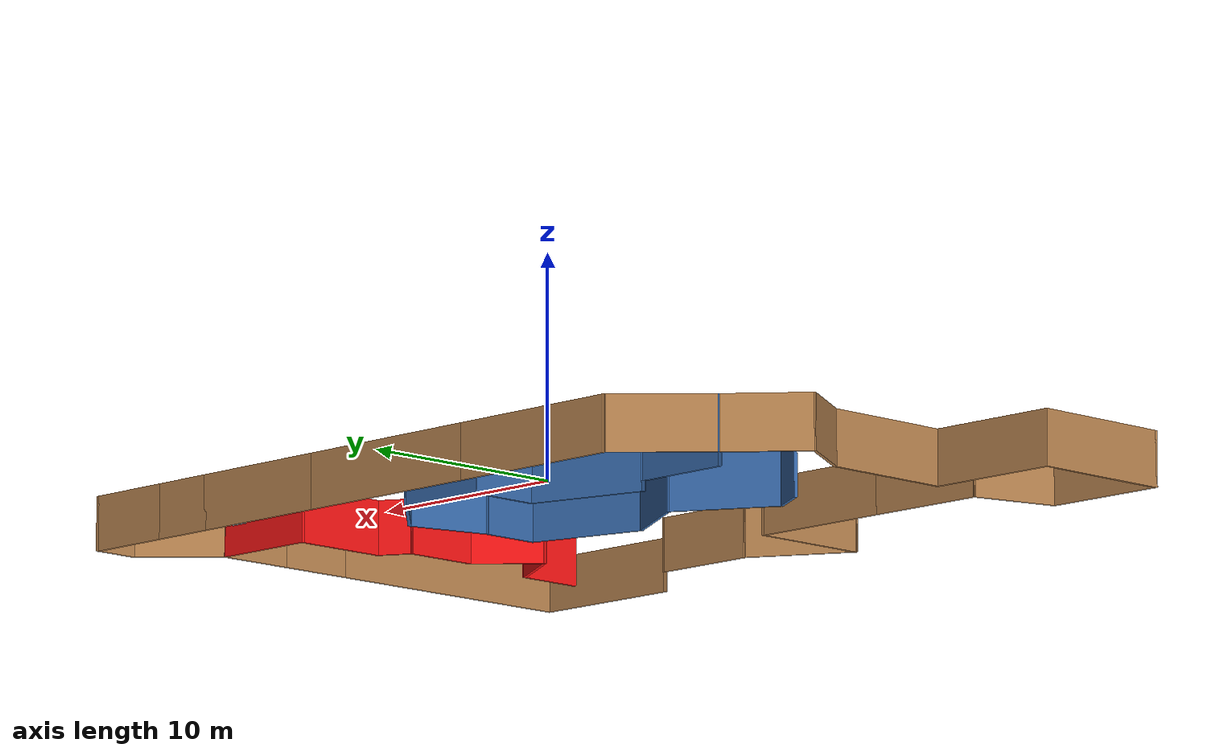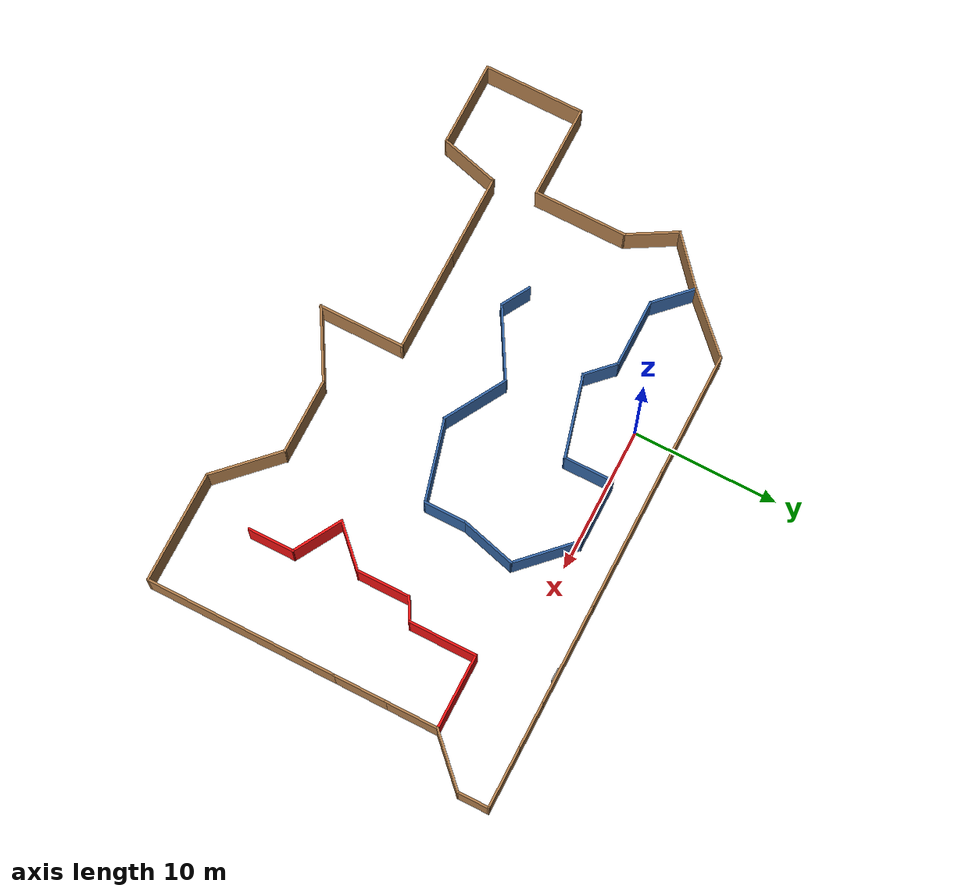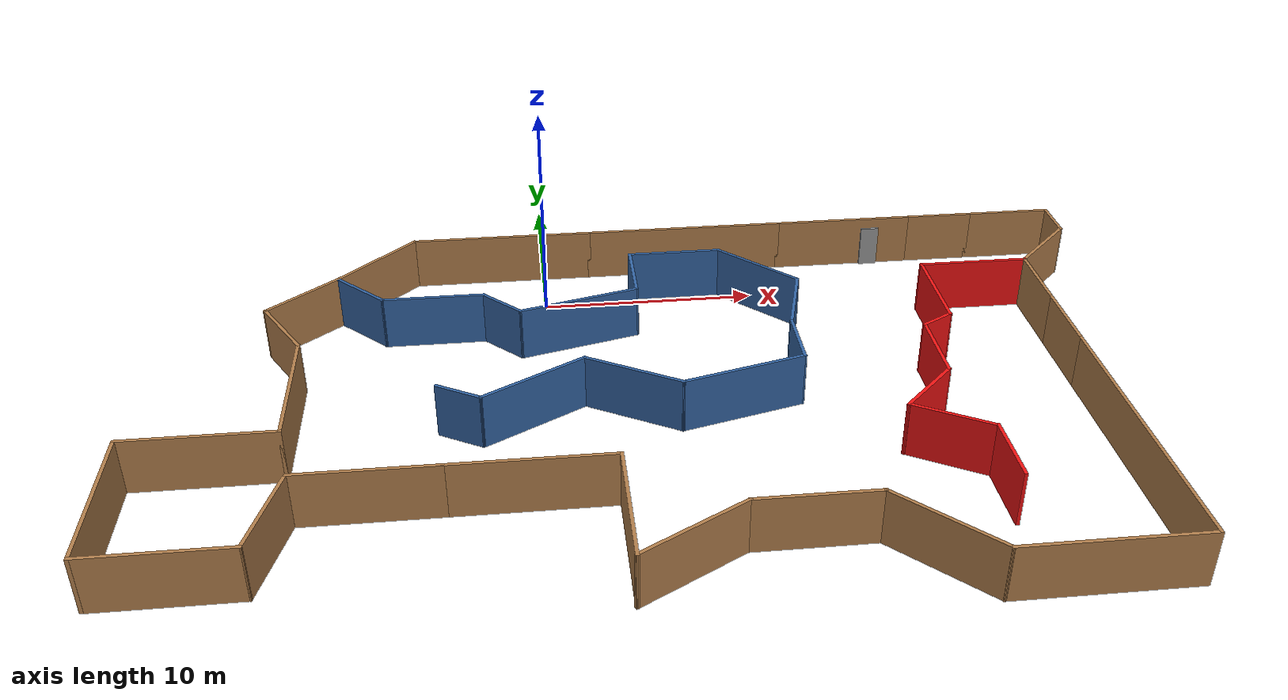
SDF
<?xml version='1.0'?>
<sdf version='1.6'>
  <model name='office'>
    <pose frame=''>4.33914 -9.8283 0 0 -0 0</pose>
    <link name='Door_0'>
      <collision name='Door_0_Collision'>
        <geometry>
          <box>
            <size>0.9 0.17 2</size>
          </box>
        </geometry>
        <pose frame=''>0 0 1 0 -0 0</pose>
      </collision>
      <visual name='Door_0_Visual'>
        <pose frame=''>0 0 1 0 -0 0</pose>
        <geometry>
          <box>
            <size>0.9 0.17 2</size>
          </box>
        </geometry>
        <material>
          <script>
            <uri>file://media/materials/scripts/gazebo.material</uri>
            <name>Gazebo/Grey</name>
          </script>
        </material>
      </visual>
      <pose frame=''>12.3308 12.5503 0 0 -0 0</pose>
    </link>
    <link name='Wall_0'>
      <collision name='Wall_0_Collision'>
        <geometry>
          <box>
            <size>5 0.15 2.5</size>
          </box>
        </geometry>
        <pose frame=''>0 0 1.25 0 -0 0</pose>
      </collision>
      <visual name='Wall_0_Visual'>
        <pose frame=''>0 0 1.25 0 -0 0</pose>
        <geometry>
          <box>
            <size>5 0.15 2.5</size>
          </box>
        </geometry>
        <material>
          <script>
            <uri>file://media/materials/scripts/gazebo.material</uri>
            <name>Gazebo/Wood</name>
          </script>
          <ambient>1 1 1 1</ambient>
        </material>
        <meta>
          <layer>0</layer>
        </meta>
      </visual>
      <pose frame=''>-12.3636 10.9348 0 0 -0 0.785398</pose>
    </link>
    <link name='Wall_1'>
      <collision name='Wall_1_Collision'>
        <geometry>
          <box>
            <size>8.75 0.15 2.5</size>
          </box>
        </geometry>
        <pose frame=''>0 0 1.25 0 -0 0</pose>
      </collision>
      <visual name='Wall_1_Visual'>
        <pose frame=''>0 0 1.25 0 -0 0</pose>
        <geometry>
          <box>
            <size>8.75 0.15 2.5</size>
          </box>
        </geometry>
        <material>
          <script>
            <uri>file://media/materials/scripts/gazebo.material</uri>
            <name>Gazebo/Wood</name>
          </script>
          <ambient>1 1 1 1</ambient>
        </material>
        <meta>
          <layer>0</layer>
        </meta>
      </visual>
      <pose frame=''>-6.3489 12.6496 0 0 -0 0</pose>
    </link>
    <link name='Wall_10'>
      <collision name='Wall_10_Collision'>
        <geometry>
          <box>
            <size>13.25 0.15 2.5</size>
          </box>
        </geometry>
        <pose frame=''>0 0 1.25 0 -0 0</pose>
      </collision>
      <visual name='Wall_10_Visual'>
        <pose frame=''>0 0 1.25 0 -0 0</pose>
        <geometry>
          <box>
            <size>13.25 0.15 2.5</size>
          </box>
        </geometry>
        <material>
          <script>
            <uri>file://media/materials/scripts/gazebo.material</uri>
            <name>Gazebo/Wood</name>
          </script>
          <ambient>1 1 1 1</ambient>
        </material>
        <meta>
          <layer>0</layer>
        </meta>
      </visual>
      <pose frame=''>18.702 -6.09957 0 0 -0 -1.5708</pose>
    </link>
    <link name='Wall_11'>
      <collision name='Wall_11_Collision'>
        <geometry>
          <box>
            <size>7.75 0.15 2.5</size>
          </box>
        </geometry>
        <pose frame=''>0 0 1.25 0 -0 0</pose>
      </collision>
      <visual name='Wall_11_Visual'>
        <pose frame=''>0 0 1.25 0 -0 0</pose>
        <geometry>
          <box>
            <size>7.75 0.15 2.5</size>
          </box>
        </geometry>
        <material>
          <script>
            <uri>file://media/materials/scripts/gazebo.material</uri>
            <name>Gazebo/Wood</name>
          </script>
          <ambient>1 1 1 1</ambient>
        </material>
        <meta>
          <layer>0</layer>
        </meta>
      </visual>
      <pose frame=''>14.902 -12.6496 0 0 -0 3.14159</pose>
    </link>
    <link name='Wall_12'>
      <collision name='Wall_12_Collision'>
        <geometry>
          <box>
            <size>5.25 0.15 2.5</size>
          </box>
        </geometry>
        <pose frame=''>0 0 1.25 0 -0 0</pose>
      </collision>
      <visual name='Wall_12_Visual'>
        <pose frame=''>0 0 1.25 0 -0 0</pose>
        <geometry>
          <box>
            <size>5.25 0.15 2.5</size>
          </box>
        </geometry>
        <material>
          <script>
            <uri>file://media/materials/scripts/gazebo.material</uri>
            <name>Gazebo/Wood</name>
          </script>
          <ambient>1 1 1 1</ambient>
        </material>
        <meta>
          <layer>0</layer>
        </meta>
      </visual>
      <pose frame=''>9.29884 -10.8464 0 0 -0 2.35619</pose>
    </link>
    <link name='Wall_13'>
      <collision name='Wall_13_Collision'>
        <geometry>
          <box>
            <size>5.25 0.15 2.5</size>
          </box>
        </geometry>
        <pose frame=''>0 0 1.25 0 -0 0</pose>
      </collision>
      <visual name='Wall_13_Visual'>
        <pose frame=''>0 0 1.25 0 -0 0</pose>
        <geometry>
          <box>
            <size>5.25 0.15 2.5</size>
          </box>
        </geometry>
        <material>
          <script>
            <uri>file://media/materials/scripts/gazebo.material</uri>
            <name>Gazebo/Wood</name>
          </script>
          <ambient>1 1 1 1</ambient>
        </material>
        <meta>
          <layer>0</layer>
        </meta>
      </visual>
      <pose frame=''>4.94572 -9.04332 0 0 -0 3.14159</pose>
    </link>
    <link name='Wall_14'>
      <collision name='Wall_14_Collision'>
        <geometry>
          <box>
            <size>5.25 0.15 2.5</size>
          </box>
        </geometry>
        <pose frame=''>0 0 1.25 0 -0 0</pose>
      </collision>
      <visual name='Wall_14_Visual'>
        <pose frame=''>0 0 1.25 0 -0 0</pose>
        <geometry>
          <box>
            <size>5.25 0.15 2.5</size>
          </box>
        </geometry>
        <material>
          <script>
            <uri>file://media/materials/scripts/gazebo.material</uri>
            <name>Gazebo/Wood</name>
          </script>
          <ambient>1 1 1 1</ambient>
        </material>
        <meta>
          <layer>0</layer>
        </meta>
      </visual>
      <pose frame=''>0.187355 -10.3183 0 0 -0 -2.61799</pose>
    </link>
    <link name='Wall_15'>
      <collision name='Wall_15_Collision'>
        <geometry>
          <box>
            <size>6 0.15 2.5</size>
          </box>
        </geometry>
        <pose frame=''>0 0 1.25 0 -0 0</pose>
      </collision>
      <visual name='Wall_15_Visual'>
        <pose frame=''>0 0 1.25 0 -0 0</pose>
        <geometry>
          <box>
            <size>6 0.15 2.5</size>
          </box>
        </geometry>
        <material>
          <script>
            <uri>file://media/materials/scripts/gazebo.material</uri>
            <name>Gazebo/Wood</name>
          </script>
          <ambient>1 1 1 1</ambient>
        </material>
        <meta>
          <layer>0</layer>
        </meta>
      </visual>
      <pose frame=''>-2.02101 -8.66832 0 0 -0 1.5708</pose>
    </link>
    <link name='Wall_16'>
      <collision name='Wall_16_Collision'>
        <geometry>
          <box>
            <size>7 0.15 2.5</size>
          </box>
        </geometry>
        <pose frame=''>0 0 1.25 0 -0 0</pose>
      </collision>
      <visual name='Wall_16_Visual'>
        <pose frame=''>0 0 1.25 0 -0 0</pose>
        <geometry>
          <box>
            <size>7 0.15 2.5</size>
          </box>
        </geometry>
        <material>
          <script>
            <uri>file://media/materials/scripts/gazebo.material</uri>
            <name>Gazebo/Wood</name>
          </script>
          <ambient>1 1 1 1</ambient>
        </material>
        <meta>
          <layer>0</layer>
        </meta>
      </visual>
      <pose frame=''>-5.44601 -5.74332 0 0 -0 3.14159</pose>
    </link>
    <link name='Wall_17'>
      <collision name='Wall_17_Collision'>
        <geometry>
          <box>
            <size>6 0.15 2.5</size>
          </box>
        </geometry>
        <pose frame=''>0 0 1.25 0 -0 0</pose>
      </collision>
      <visual name='Wall_17_Visual'>
        <pose frame=''>0 0 1.25 0 -0 0</pose>
        <geometry>
          <box>
            <size>6 0.15 2.5</size>
          </box>
        </geometry>
        <material>
          <script>
            <uri>file://media/materials/scripts/gazebo.material</uri>
            <name>Gazebo/Wood</name>
          </script>
          <ambient>1 1 1 1</ambient>
        </material>
        <meta>
          <layer>0</layer>
        </meta>
      </visual>
      <pose frame=''>-11.796 -5.74332 0 0 -0 3.14159</pose>
    </link>
    <link name='Wall_18'>
      <collision name='Wall_18_Collision'>
        <geometry>
          <box>
            <size>4.25 0.15 2.5</size>
          </box>
        </geometry>
        <pose frame=''>0 0 1.25 0 -0 0</pose>
      </collision>
      <visual name='Wall_18_Visual'>
        <pose frame=''>0 0 1.25 0 -0 0</pose>
        <geometry>
          <box>
            <size>4.25 0.15 2.5</size>
          </box>
        </geometry>
        <material>
          <script>
            <uri>file://media/materials/scripts/gazebo.material</uri>
            <name>Gazebo/Wood</name>
          </script>
          <ambient>1 1 1 1</ambient>
        </material>
        <meta>
          <layer>0</layer>
        </meta>
      </visual>
      <pose frame=''>-15.2516 -7.72347 0 0 -0 -1.8326</pose>
    </link>
    <link name='Wall_19'>
      <collision name='Wall_19_Collision'>
        <geometry>
          <box>
            <size>6 0.15 2.5</size>
          </box>
        </geometry>
        <pose frame=''>0 0 1.25 0 -0 0</pose>
      </collision>
      <visual name='Wall_19_Visual'>
        <pose frame=''>0 0 1.25 0 -0 0</pose>
        <geometry>
          <box>
            <size>6 0.15 2.5</size>
          </box>
        </geometry>
        <material>
          <script>
            <uri>file://media/materials/scripts/gazebo.material</uri>
            <name>Gazebo/Wood</name>
          </script>
          <ambient>1 1 1 1</ambient>
        </material>
        <meta>
          <layer>0</layer>
        </meta>
      </visual>
      <pose frame=''>-18.7072 -9.70362 0 0 -0 3.14159</pose>
    </link>
    <link name='Wall_2'>
      <collision name='Wall_2_Collision'>
        <geometry>
          <box>
            <size>9.75 0.15 2.5</size>
          </box>
        </geometry>
        <pose frame=''>0 0 1.25 0 -0 0</pose>
      </collision>
      <visual name='Wall_2_Visual'>
        <pose frame=''>0 0 1.25 0 -0 0</pose>
        <geometry>
          <box>
            <size>9.75 0.15 2.5</size>
          </box>
        </geometry>
        <material>
          <script>
            <uri>file://media/materials/scripts/gazebo.material</uri>
            <name>Gazebo/Wood</name>
          </script>
          <ambient>1 1 1 1</ambient>
        </material>
        <meta>
          <layer>0</layer>
        </meta>
      </visual>
      <pose frame=''>2.7511 12.6496 0 0 -0 0</pose>
    </link>
    <link name='Wall_20'>
      <collision name='Wall_20_Collision'>
        <geometry>
          <box>
            <size>7 0.15 2.5</size>
          </box>
        </geometry>
        <pose frame=''>0 0 1.25 0 -0 0</pose>
      </collision>
      <visual name='Wall_20_Visual'>
        <pose frame=''>0 0 1.25 0 -0 0</pose>
        <geometry>
          <box>
            <size>7 0.15 2.5</size>
          </box>
        </geometry>
        <material>
          <script>
            <uri>file://media/materials/scripts/gazebo.material</uri>
            <name>Gazebo/Wood</name>
          </script>
          <ambient>1 1 1 1</ambient>
        </material>
        <meta>
          <layer>0</layer>
        </meta>
      </visual>
      <pose frame=''>-21.6322 -6.27862 0 0 -0 1.5708</pose>
    </link>
    <link name='Wall_21'>
      <collision name='Wall_21_Collision'>
        <geometry>
          <box>
            <size>6.5 0.15 2.5</size>
          </box>
        </geometry>
        <pose frame=''>0 0 1.25 0 -0 0</pose>
      </collision>
      <visual name='Wall_21_Visual'>
        <pose frame=''>0 0 1.25 0 -0 0</pose>
        <geometry>
          <box>
            <size>6.5 0.15 2.5</size>
          </box>
        </geometry>
        <material>
          <script>
            <uri>file://media/materials/scripts/gazebo.material</uri>
            <name>Gazebo/Wood</name>
          </script>
          <ambient>1 1 1 1</ambient>
        </material>
        <meta>
          <layer>0</layer>
        </meta>
      </visual>
      <pose frame=''>-18.4572 -2.85362 0 0 -0 0</pose>
    </link>
    <link name='Wall_22'>
      <collision name='Wall_22_Collision'>
        <geometry>
          <box>
            <size>6.5 0.15 2.5</size>
          </box>
        </geometry>
        <pose frame=''>0 0 1.25 0 -0 0</pose>
      </collision>
      <visual name='Wall_22_Visual'>
        <pose frame=''>0 0 1.25 0 -0 0</pose>
        <geometry>
          <box>
            <size>6.5 0.15 2.5</size>
          </box>
        </geometry>
        <material>
          <script>
            <uri>file://media/materials/scripts/gazebo.material</uri>
            <name>Gazebo/Wood</name>
          </script>
          <ambient>1 1 1 1</ambient>
        </material>
        <meta>
          <layer>0</layer>
        </meta>
      </visual>
      <pose frame=''>-15.2822 0.32138 0 0 -0 1.5708</pose>
    </link>
    <link name='Wall_23'>
      <collision name='Wall_23_Collision'>
        <geometry>
          <box>
            <size>3.75 0.15 2.5</size>
          </box>
        </geometry>
        <pose frame=''>0 0 1.25 0 -0 0</pose>
      </collision>
      <visual name='Wall_23_Visual'>
        <pose frame=''>0 0 1.25 0 -0 0</pose>
        <geometry>
          <box>
            <size>3.75 0.15 2.5</size>
          </box>
        </geometry>
        <material>
          <script>
            <uri>file://media/materials/scripts/gazebo.material</uri>
            <name>Gazebo/Wood</name>
          </script>
          <ambient>1 1 1 1</ambient>
        </material>
        <meta>
          <layer>0</layer>
        </meta>
      </visual>
      <pose frame=''>-16.1822 5.05523 0 0 -0 2.0944</pose>
    </link>
    <link name='Wall_24'>
      <collision name='Wall_24_Collision'>
        <geometry>
          <box>
            <size>4.12671 0.15 2.5</size>
          </box>
        </geometry>
        <pose frame=''>0 0 1.25 0 -0 0</pose>
      </collision>
      <visual name='Wall_24_Visual'>
        <pose frame=''>0 0 1.25 0 -0 0</pose>
        <geometry>
          <box>
            <size>4.12671 0.15 2.5</size>
          </box>
        </geometry>
        <material>
          <script>
            <uri>file://media/materials/scripts/gazebo.material</uri>
            <name>Gazebo/Wood</name>
          </script>
          <ambient>1 1 1 1</ambient>
        </material>
        <meta>
          <layer>0</layer>
        </meta>
      </visual>
      <pose frame=''>-15.5803 7.91709 0 0 -0 0.71461</pose>
    </link>
    <link name='Wall_25'>
      <collision name='Wall_25_Collision'>
        <geometry>
          <box>
            <size>3.25 0.15 2.5</size>
          </box>
        </geometry>
        <pose frame=''>0 0 1.25 0 -0 0</pose>
      </collision>
      <visual name='Wall_25_Visual'>
        <pose frame=''>0 0 1.25 0 -0 0</pose>
        <geometry>
          <box>
            <size>3.25 0.15 2.5</size>
          </box>
        </geometry>
        <material>
          <script>
            <uri>file://media/materials/scripts/gazebo.material</uri>
            <name>Gazebo/Grey</name>
          </script>
          <ambient>0.203922 0.396078 0.643137 1</ambient>
        </material>
        <meta>
          <layer>0</layer>
        </meta>
      </visual>
      <pose frame=''>-12.9824 8.12409 0 0 -0 -0.785398</pose>
    </link>
    <link name='Wall_26'>
      <collision name='Wall_26_Collision'>
        <geometry>
          <box>
            <size>4.75 0.15 2.5</size>
          </box>
        </geometry>
        <pose frame=''>0 0 1.25 0 -0 0</pose>
      </collision>
      <visual name='Wall_26_Visual'>
        <pose frame=''>0 0 1.25 0 -0 0</pose>
        <geometry>
          <box>
            <size>4.75 0.15 2.5</size>
          </box>
        </geometry>
        <material>
          <script>
            <uri>file://media/materials/scripts/gazebo.material</uri>
            <name>Gazebo/Grey</name>
          </script>
          <ambient>0.203922 0.396078 0.643137 1</ambient>
        </material>
        <meta>
          <layer>0</layer>
        </meta>
      </visual>
      <pose frame=''>-9.58634 7.02807 0 0 -0 0</pose>
    </link>
    <link name='Wall_27'>
      <collision name='Wall_27_Collision'>
        <geometry>
          <box>
            <size>2.5 0.15 2.5</size>
          </box>
        </geometry>
        <pose frame=''>0 0 1.25 0 -0 0</pose>
      </collision>
      <visual name='Wall_27_Visual'>
        <pose frame=''>0 0 1.25 0 -0 0</pose>
        <geometry>
          <box>
            <size>2.5 0.15 2.5</size>
          </box>
        </geometry>
        <material>
          <script>
            <uri>file://media/materials/scripts/gazebo.material</uri>
            <name>Gazebo/Grey</name>
          </script>
          <ambient>0.203922 0.396078 0.643137 1</ambient>
        </material>
        <meta>
          <layer>0</layer>
        </meta>
      </visual>
      <pose frame=''>-6.45548 6.19722 0 0 -0 -0.785398</pose>
    </link>
    <link name='Wall_28'>
      <collision name='Wall_28_Collision'>
        <geometry>
          <box>
            <size>5.75 0.15 2.5</size>
          </box>
        </geometry>
        <pose frame=''>0 0 1.25 0 -0 0</pose>
      </collision>
      <visual name='Wall_28_Visual'>
        <pose frame=''>0 0 1.25 0 -0 0</pose>
        <geometry>
          <box>
            <size>5.75 0.15 2.5</size>
          </box>
        </geometry>
        <material>
          <script>
            <uri>file://media/materials/scripts/gazebo.material</uri>
            <name>Gazebo/Grey</name>
          </script>
          <ambient>0.203922 0.396078 0.643137 1</ambient>
        </material>
        <meta>
          <layer>0</layer>
        </meta>
      </visual>
      <pose frame=''>-2.92004 6.09106 0 0 -0 0.261799</pose>
    </link>
    <link name='Wall_29'>
      <collision name='Wall_29_Collision'>
        <geometry>
          <box>
            <size>3.5 0.15 2.5</size>
          </box>
        </geometry>
        <pose frame=''>0 0 1.25 0 -0 0</pose>
      </collision>
      <visual name='Wall_29_Visual'>
        <pose frame=''>0 0 1.25 0 -0 0</pose>
        <geometry>
          <box>
            <size>3.5 0.15 2.5</size>
          </box>
        </geometry>
        <material>
          <script>
            <uri>file://media/materials/scripts/gazebo.material</uri>
            <name>Gazebo/Grey</name>
          </script>
          <ambient>0.203922 0.396078 0.643137 1</ambient>
        </material>
        <meta>
          <layer>0</layer>
        </meta>
      </visual>
      <pose frame=''>-0.215449 8.49076 0 0 -0 1.5708</pose>
    </link>
    <link name='Wall_3'>
      <collision name='Wall_3_Collision'>
        <geometry>
          <box>
            <size>7 0.15 2.5</size>
          </box>
        </geometry>
        <pose frame=''>0 0 1.25 0 -0 0</pose>
      </collision>
      <visual name='Wall_3_Visual'>
        <pose frame=''>0 0 1.25 0 -0 0</pose>
        <geometry>
          <box>
            <size>7 0.15 2.5</size>
          </box>
        </geometry>
        <material>
          <script>
            <uri>file://media/materials/scripts/gazebo.material</uri>
            <name>Gazebo/Wood</name>
          </script>
          <ambient>1 1 1 1</ambient>
        </material>
        <meta>
          <layer>0</layer>
        </meta>
      </visual>
      <pose frame=''>10.9761 12.6496 0 0 -0 0</pose>
    </link>
    <link name='Wall_30'>
      <collision name='Wall_30_Collision'>
        <geometry>
          <box>
            <size>4.5 0.15 2.5</size>
          </box>
        </geometry>
        <pose frame=''>0 0 1.25 0 -0 0</pose>
      </collision>
      <visual name='Wall_30_Visual'>
        <pose frame=''>0 0 1.25 0 -0 0</pose>
        <geometry>
          <box>
            <size>4.5 0.15 2.5</size>
          </box>
        </geometry>
        <material>
          <script>
            <uri>file://media/materials/scripts/gazebo.material</uri>
            <name>Gazebo/Grey</name>
          </script>
          <ambient>0.203922 0.396078 0.643137 1</ambient>
        </material>
        <meta>
          <layer>0</layer>
        </meta>
      </visual>
      <pose frame=''>1.95955 10.1658 0 0 -0 0</pose>
    </link>
    <link name='Wall_31'>
      <collision name='Wall_31_Collision'>
        <geometry>
          <box>
            <size>4.75 0.15 2.5</size>
          </box>
        </geometry>
        <pose frame=''>0 0 1.25 0 -0 0</pose>
      </collision>
      <visual name='Wall_31_Visual'>
        <pose frame=''>0 0 1.25 0 -0 0</pose>
        <geometry>
          <box>
            <size>4.75 0.15 2.5</size>
          </box>
        </geometry>
        <material>
          <script>
            <uri>file://media/materials/scripts/gazebo.material</uri>
            <name>Gazebo/Grey</name>
          </script>
          <ambient>0.203922 0.396078 0.643137 1</ambient>
        </material>
        <meta>
          <layer>0</layer>
        </meta>
      </visual>
      <pose frame=''>5.7609 8.53941 0 0 -0 -0.785398</pose>
    </link>
    <link name='Wall_32'>
      <collision name='Wall_32_Collision'>
        <geometry>
          <box>
            <size>4 0.15 2.5</size>
          </box>
        </geometry>
        <pose frame=''>0 0 1.25 0 -0 0</pose>
      </collision>
      <visual name='Wall_32_Visual'>
        <pose frame=''>0 0 1.25 0 -0 0</pose>
        <geometry>
          <box>
            <size>4 0.15 2.5</size>
          </box>
        </geometry>
        <material>
          <script>
            <uri>file://media/materials/scripts/gazebo.material</uri>
            <name>Gazebo/Grey</name>
          </script>
          <ambient>0.203922 0.396078 0.643137 1</ambient>
        </material>
        <meta>
          <layer>0</layer>
        </meta>
      </visual>
      <pose frame=''>6.88901 5.05366 0 0 -0 -1.8326</pose>
    </link>
    <link name='Wall_33'>
      <collision name='Wall_33_Collision'>
        <geometry>
          <box>
            <size>3 0.15 2.5</size>
          </box>
        </geometry>
        <pose frame=''>0 0 1.25 0 -0 0</pose>
      </collision>
      <visual name='Wall_33_Visual'>
        <pose frame=''>0 0 1.25 0 -0 0</pose>
        <geometry>
          <box>
            <size>3 0.15 2.5</size>
          </box>
        </geometry>
        <material>
          <script>
            <uri>file://media/materials/scripts/gazebo.material</uri>
            <name>Gazebo/Grey</name>
          </script>
          <ambient>0.203922 0.396078 0.643137 1</ambient>
        </material>
        <meta>
          <layer>0</layer>
        </meta>
      </visual>
      <pose frame=''>6.39079 1.76925 0 0 -0 -1.5708</pose>
    </link>
    <link name='Wall_34'>
      <collision name='Wall_34_Collision'>
        <geometry>
          <box>
            <size>5.75 0.15 2.5</size>
          </box>
        </geometry>
        <pose frame=''>0 0 1.25 0 -0 0</pose>
      </collision>
      <visual name='Wall_34_Visual'>
        <pose frame=''>0 0 1.25 0 -0 0</pose>
        <geometry>
          <box>
            <size>5.75 0.15 2.5</size>
          </box>
        </geometry>
        <material>
          <script>
            <uri>file://media/materials/scripts/gazebo.material</uri>
            <name>Gazebo/Grey</name>
          </script>
          <ambient>0.203922 0.396078 0.643137 1</ambient>
        </material>
        <meta>
          <layer>0</layer>
        </meta>
      </visual>
      <pose frame=''>3.6862 -0.380443 0 0 -0 -2.87979</pose>
    </link>
    <link name='Wall_35'>
      <collision name='Wall_35_Collision'>
        <geometry>
          <box>
            <size>4.75 0.15 2.5</size>
          </box>
        </geometry>
        <pose frame=''>0 0 1.25 0 -0 0</pose>
      </collision>
      <visual name='Wall_35_Visual'>
        <pose frame=''>0 0 1.25 0 -0 0</pose>
        <geometry>
          <box>
            <size>4.75 0.15 2.5</size>
          </box>
        </geometry>
        <material>
          <script>
            <uri>file://media/materials/scripts/gazebo.material</uri>
            <name>Gazebo/Grey</name>
          </script>
          <ambient>0.203922 0.396078 0.643137 1</ambient>
        </material>
        <meta>
          <layer>0</layer>
        </meta>
      </visual>
      <pose frame=''>-1.01025 0.044864 0 0 -0 2.61799</pose>
    </link>
    <link name='Wall_36'>
      <collision name='Wall_36_Collision'>
        <geometry>
          <box>
            <size>5.25 0.15 2.5</size>
          </box>
        </geometry>
        <pose frame=''>0 0 1.25 0 -0 0</pose>
      </collision>
      <visual name='Wall_36_Visual'>
        <pose frame=''>0 0 1.25 0 -0 0</pose>
        <geometry>
          <box>
            <size>5.25 0.15 2.5</size>
          </box>
        </geometry>
        <material>
          <script>
            <uri>file://media/materials/scripts/gazebo.material</uri>
            <name>Gazebo/Grey</name>
          </script>
          <ambient>0.203922 0.396078 0.643137 1</ambient>
        </material>
        <meta>
          <layer>0</layer>
        </meta>
      </visual>
      <pose frame=''>-5.21048 -0.080136 0 0 -0 -2.61799</pose>
    </link>
    <link name='Wall_37'>
      <collision name='Wall_37_Collision'>
        <geometry>
          <box>
            <size>2.25 0.15 2.5</size>
          </box>
        </geometry>
        <pose frame=''>0 0 1.25 0 -0 0</pose>
      </collision>
      <visual name='Wall_37_Visual'>
        <pose frame=''>0 0 1.25 0 -0 0</pose>
        <geometry>
          <box>
            <size>2.25 0.15 2.5</size>
          </box>
        </geometry>
        <material>
          <script>
            <uri>file://media/materials/scripts/gazebo.material</uri>
            <name>Gazebo/Grey</name>
          </script>
          <ambient>0.203922 0.396078 0.643137 1</ambient>
        </material>
        <meta>
          <layer>0</layer>
        </meta>
      </visual>
      <pose frame=''>-8.32817 -0.830136 0 0 -0 2.61799</pose>
    </link>
    <link name='Wall_39'>
      <collision name='Wall_39_Collision'>
        <geometry>
          <box>
            <size>5.25 0.15 2.5</size>
          </box>
        </geometry>
        <pose frame=''>0 0 1.25 0 -0 0</pose>
      </collision>
      <visual name='Wall_39_Visual'>
        <pose frame=''>0 0 1.25 0 -0 0</pose>
        <geometry>
          <box>
            <size>5.25 0.15 2.5</size>
          </box>
        </geometry>
        <material>
          <script>
            <uri>file://media/materials/scripts/gazebo.material</uri>
            <name>Gazebo/Grey</name>
          </script>
          <ambient>0.945098 0.0745098 0.0745098 1</ambient>
        </material>
        <meta>
          <layer>0</layer>
        </meta>
      </visual>
      <pose frame=''>16.152 7.65043 0 0 -0 3.14159</pose>
    </link>
    <link name='Wall_4'>
      <collision name='Wall_4_Collision'>
        <geometry>
          <box>
            <size>3.25 0.15 2.5</size>
          </box>
        </geometry>
        <pose frame=''>0 0 1.25 0 -0 0</pose>
      </collision>
      <visual name='Wall_4_Visual'>
        <pose frame=''>0 0 1.25 0 -0 0</pose>
        <geometry>
          <box>
            <size>3.25 0.15 2.5</size>
          </box>
        </geometry>
        <material>
          <script>
            <uri>file://media/materials/scripts/gazebo.material</uri>
            <name>Gazebo/Wood</name>
          </script>
          <ambient>1 1 1 1</ambient>
        </material>
        <meta>
          <layer>0</layer>
        </meta>
      </visual>
      <pose frame=''>15.9511 12.6496 0 0 -0 0</pose>
    </link>
    <link name='Wall_40'>
      <collision name='Wall_40_Collision'>
        <geometry>
          <box>
            <size>4.75 0.15 2.5</size>
          </box>
        </geometry>
        <pose frame=''>0 0 1.25 0 -0 0</pose>
      </collision>
      <visual name='Wall_40_Visual'>
        <pose frame=''>0 0 1.25 0 -0 0</pose>
        <geometry>
          <box>
            <size>4.75 0.15 2.5</size>
          </box>
        </geometry>
        <material>
          <script>
            <uri>file://media/materials/scripts/gazebo.material</uri>
            <name>Gazebo/Grey</name>
          </script>
          <ambient>0.945098 0.0745098 0.0745098 1</ambient>
        </material>
        <meta>
          <layer>0</layer>
        </meta>
      </visual>
      <pose frame=''>13.602 5.35043 0 0 -0 -1.5708</pose>
    </link>
    <link name='Wall_41'>
      <collision name='Wall_41_Collision'>
        <geometry>
          <box>
            <size>1.75 0.15 2.5</size>
          </box>
        </geometry>
        <pose frame=''>0 0 1.25 0 -0 0</pose>
      </collision>
      <visual name='Wall_41_Visual'>
        <pose frame=''>0 0 1.25 0 -0 0</pose>
        <geometry>
          <box>
            <size>1.75 0.15 2.5</size>
          </box>
        </geometry>
        <material>
          <script>
            <uri>file://media/materials/scripts/gazebo.material</uri>
            <name>Gazebo/Grey</name>
          </script>
          <ambient>0.945098 0.0745098 0.0745098 1</ambient>
        </material>
        <meta>
          <layer>0</layer>
        </meta>
      </visual>
      <pose frame=''>12.9091 2.65043 0 0 -0 -2.61799</pose>
    </link>
    <link name='Wall_42'>
      <collision name='Wall_42_Collision'>
        <geometry>
          <box>
            <size>3.75 0.15 2.5</size>
          </box>
        </geometry>
        <pose frame=''>0 0 1.25 0 -0 0</pose>
      </collision>
      <visual name='Wall_42_Visual'>
        <pose frame=''>0 0 1.25 0 -0 0</pose>
        <geometry>
          <box>
            <size>3.75 0.15 2.5</size>
          </box>
        </geometry>
        <material>
          <script>
            <uri>file://media/materials/scripts/gazebo.material</uri>
            <name>Gazebo/Grey</name>
          </script>
          <ambient>0.945098 0.0745098 0.0745098 1</ambient>
        </material>
        <meta>
          <layer>0</layer>
        </meta>
      </visual>
      <pose frame=''>12.2163 0.450431 0 0 -0 -1.5708</pose>
    </link>
    <link name='Wall_43'>
      <collision name='Wall_43_Collision'>
        <geometry>
          <box>
            <size>3.5 0.15 2.5</size>
          </box>
        </geometry>
        <pose frame=''>0 0 1.25 0 -0 0</pose>
      </collision>
      <visual name='Wall_43_Visual'>
        <pose frame=''>0 0 1.25 0 -0 0</pose>
        <geometry>
          <box>
            <size>3.5 0.15 2.5</size>
          </box>
        </geometry>
        <material>
          <script>
            <uri>file://media/materials/scripts/gazebo.material</uri>
            <name>Gazebo/Grey</name>
          </script>
          <ambient>0.945098 0.0745098 0.0745098 1</ambient>
        </material>
        <meta>
          <layer>0</layer>
        </meta>
      </visual>
      <pose frame=''>11.0319 -2.53397 0 0 -0 -2.35619</pose>
    </link>
    <link name='Wall_44'>
      <collision name='Wall_44_Collision'>
        <geometry>
          <box>
            <size>3.75 0.15 2.5</size>
          </box>
        </geometry>
        <pose frame=''>0 0 1.25 0 -0 0</pose>
      </collision>
      <visual name='Wall_44_Visual'>
        <pose frame=''>0 0 1.25 0 -0 0</pose>
        <geometry>
          <box>
            <size>3.75 0.15 2.5</size>
          </box>
        </geometry>
        <material>
          <script>
            <uri>file://media/materials/scripts/gazebo.material</uri>
            <name>Gazebo/Grey</name>
          </script>
          <ambient>0.945098 0.0745098 0.0745098 1</ambient>
        </material>
        <meta>
          <layer>0</layer>
        </meta>
      </visual>
      <pose frame=''>11.4064 -4.61838 0 0 -0 -0.523599</pose>
    </link>
    <link name='Wall_45'>
      <collision name='Wall_45_Collision'>
        <geometry>
          <box>
            <size>3.25 0.15 2.5</size>
          </box>
        </geometry>
        <pose frame=''>0 0 1.25 0 -0 0</pose>
      </collision>
      <visual name='Wall_45_Visual'>
        <pose frame=''>0 0 1.25 0 -0 0</pose>
        <geometry>
          <box>
            <size>3.25 0.15 2.5</size>
          </box>
        </geometry>
        <material>
          <script>
            <uri>file://media/materials/scripts/gazebo.material</uri>
            <name>Gazebo/Grey</name>
          </script>
          <ambient>0.945098 0.0745098 0.0745098 1</ambient>
        </material>
        <meta>
          <layer>0</layer>
        </meta>
      </visual>
      <pose frame=''>12.9652 -7.06838 0 0 -0 -1.5708</pose>
    </link>
    <link name='Wall_5'>
      <collision name='Wall_5_Collision'>
        <geometry>
          <box>
            <size>4.25 0.15 2.5</size>
          </box>
        </geometry>
        <pose frame=''>0 0 1.25 0 -0 0</pose>
      </collision>
      <visual name='Wall_5_Visual'>
        <pose frame=''>0 0 1.25 0 -0 0</pose>
        <geometry>
          <box>
            <size>4.25 0.15 2.5</size>
          </box>
        </geometry>
        <material>
          <script>
            <uri>file://media/materials/scripts/gazebo.material</uri>
            <name>Gazebo/Wood</name>
          </script>
          <ambient>1 1 1 1</ambient>
        </material>
        <meta>
          <layer>0</layer>
        </meta>
      </visual>
      <pose frame=''>19.5511 12.6496 0 0 -0 0</pose>
    </link>
    <link name='Wall_6'>
      <collision name='Wall_6_Collision'>
        <geometry>
          <box>
            <size>2.25 0.15 2.5</size>
          </box>
        </geometry>
        <pose frame=''>0 0 1.25 0 -0 0</pose>
      </collision>
      <visual name='Wall_6_Visual'>
        <pose frame=''>0 0 1.25 0 -0 0</pose>
        <geometry>
          <box>
            <size>2.25 0.15 2.5</size>
          </box>
        </geometry>
        <material>
          <script>
            <uri>file://media/materials/scripts/gazebo.material</uri>
            <name>Gazebo/Wood</name>
          </script>
          <ambient>1 1 1 1</ambient>
        </material>
        <meta>
          <layer>0</layer>
        </meta>
      </visual>
      <pose frame=''>21.6011 11.5996 0 0 -0 -1.5708</pose>
    </link>
    <link name='Wall_7'>
      <collision name='Wall_7_Collision'>
        <geometry>
          <box>
            <size>4.25 0.15 2.5</size>
          </box>
        </geometry>
        <pose frame=''>0 0 1.25 0 -0 0</pose>
      </collision>
      <visual name='Wall_7_Visual'>
        <pose frame=''>0 0 1.25 0 -0 0</pose>
        <geometry>
          <box>
            <size>4.25 0.15 2.5</size>
          </box>
        </geometry>
        <material>
          <script>
            <uri>file://media/materials/scripts/gazebo.material</uri>
            <name>Gazebo/Wood</name>
          </script>
          <ambient>1 1 1 1</ambient>
        </material>
        <meta>
          <layer>0</layer>
        </meta>
      </visual>
      <pose frame=''>20.1515 9.1 0 0 -0 -2.35619</pose>
    </link>
    <link name='Wall_8'>
      <collision name='Wall_8_Collision'>
        <geometry>
          <box>
            <size>3.75 0.15 2.5</size>
          </box>
        </geometry>
        <pose frame=''>0 0 1.25 0 -0 0</pose>
      </collision>
      <visual name='Wall_8_Visual'>
        <pose frame=''>0 0 1.25 0 -0 0</pose>
        <geometry>
          <box>
            <size>3.75 0.15 2.5</size>
          </box>
        </geometry>
        <material>
          <script>
            <uri>file://media/materials/scripts/gazebo.material</uri>
            <name>Gazebo/Wood</name>
          </script>
          <ambient>1 1 1 1</ambient>
        </material>
        <meta>
          <layer>0</layer>
        </meta>
      </visual>
      <pose frame=''>18.702 5.85043 0 0 -0 -1.5708</pose>
    </link>
    <link name='Wall_9'>
      <collision name='Wall_9_Collision'>
        <geometry>
          <box>
            <size>3.75 0.15 2.5</size>
          </box>
        </geometry>
        <pose frame=''>0 0 1.25 0 -0 0</pose>
      </collision>
      <visual name='Wall_9_Visual'>
        <pose frame=''>0 0 1.25 0 -0 0</pose>
        <geometry>
          <box>
            <size>3.75 0.15 2.5</size>
          </box>
        </geometry>
        <material>
          <script>
            <uri>file://media/materials/scripts/gazebo.material</uri>
            <name>Gazebo/Wood</name>
          </script>
          <ambient>1 1 1 1</ambient>
        </material>
        <meta>
          <layer>0</layer>
        </meta>
      </visual>
      <pose frame=''>18.702 2.25043 0 0 -0 -1.5708</pose>
    </link>
    <static>1</static>
  </model>
</sdf>
